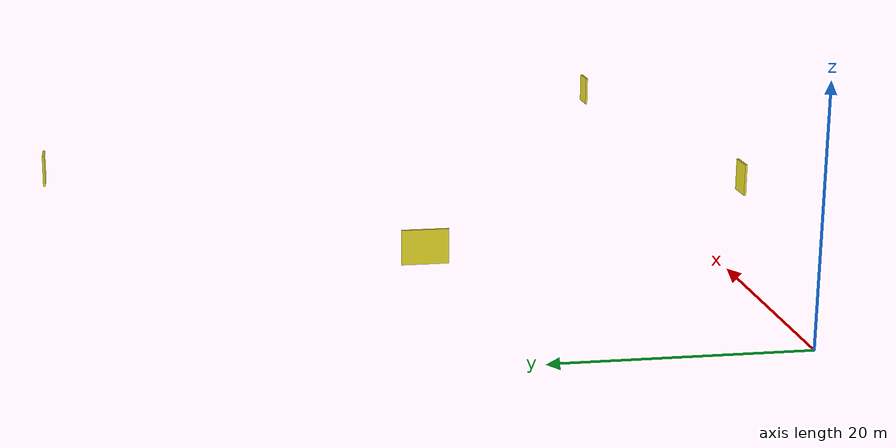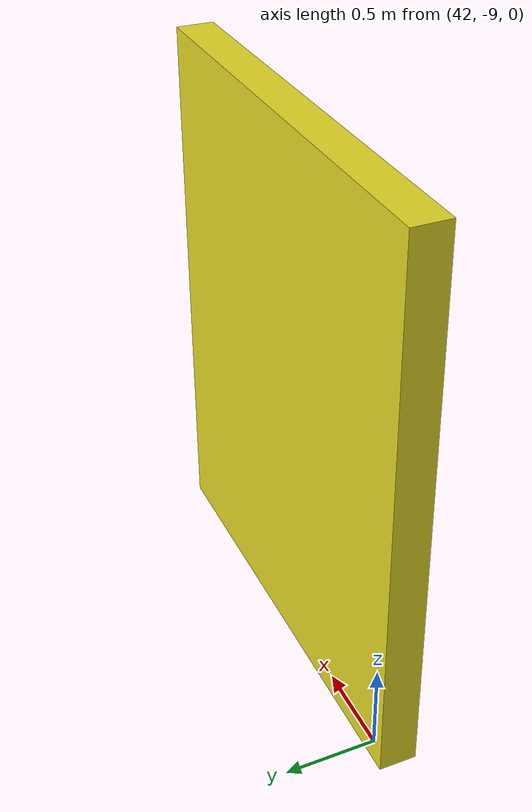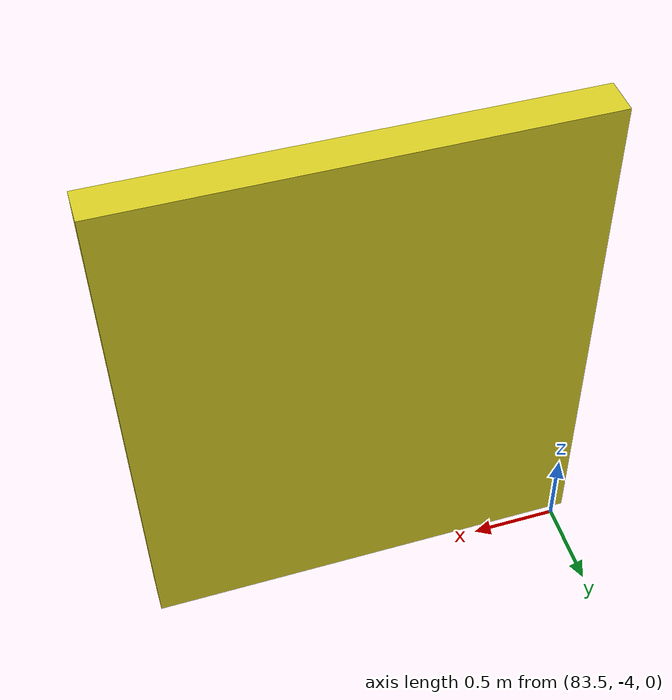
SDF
<sdf version="1.7">
 <world name="default">
  <include><uri>model://sun</uri></include>
  <plugin name="ros_interface_plugin" filename="librotors_gazebo_ros_interface_plugin.so"/>
  <spherical_coordinates>
   <surface_model>EARTH_WGS84</surface_model>
   <latitude_deg>47.3667</latitude_deg>
   <longitude_deg>8.55</longitude_deg>
   <elevation>500</elevation>
   <heading_deg>0</heading_deg>
  </spherical_coordinates>
  <physics type="ode">
   <ode>
    <solver>
     <type>quick</type>
     <iters>1000</iters>
     <sor>1.3</sor>
     <use_dynamic_moi_rescaling>0</use_dynamic_moi_rescaling>
    </solver>
    <constraints>
     <cfm>0</cfm>
     <erp>0.2</erp>
     <contact_max_correcting_vel>100</contact_max_correcting_vel>
     <contact_surface_layer>0.001</contact_surface_layer>
    </constraints>
   </ode>
   <max_step_size>0.001</max_step_size>
   <real_time_factor>1</real_time_factor>
   <real_time_update_rate>1000</real_time_update_rate>
   <gravity>0 0 -9.8</gravity>
  </physics>
  <model name="door1">
   <link name="link">
    <inertial>
     <mass>1</mass>
     <inertia>
      <ixx>0.166667</ixx>
      <ixy>0</ixy>
      <ixz>0</ixz>
      <iyy>0.166667</iyy>
      <iyz>0</iyz>
      <izz>0.166667</izz>
     </inertia>
    </inertial>
    <gravity>0</gravity>
    <visual name="visual">
     <geometry><box><size>2.5 0.2 3</size></box></geometry>
     <material>
      <script><name>Gazebo/Yellow</name><uri>file://media/materials/scripts/gazebo.material</uri></script>
     </material>
    </visual>
    <collision name="collision"><geometry><box><size>2.5 0.2 3</size></box></geometry></collision>
   </link>
   <static>0</static>
   <pose>43 -9 1.6 0 -0 0</pose>
  </model>
  <gravity>0 0 -9.8</gravity>
  <model name="door2">
   <link name="link">
    <inertial>
     <mass>1</mass>
     <inertia>
      <ixx>0.166667</ixx>
      <ixy>0</ixy>
      <ixz>0</ixz>
      <iyy>0.166667</iyy>
      <iyz>0</iyz>
      <izz>0.166667</izz>
     </inertia>
    </inertial>
    <gravity>0</gravity>
    <visual name="visual">
     <geometry><box><size>2.5 0.2 3</size></box></geometry>
     <material>
      <script><name>Gazebo/Yellow</name><uri>file://media/materials/scripts/gazebo.material</uri></script>
     </material>
    </visual>
    <collision name="collision"><geometry><box><size>2.5 0.2 3</size></box></geometry></collision>
   </link>
   <static>0</static>
   <pose>84.7002 -4.0782 1.6 0 -0 0</pose>
  </model>
  <model name="door3">
   <link name="link">
    <inertial>
     <mass>1</mass>
     <inertia>
      <ixx>0.166667</ixx>
      <ixy>0</ixy>
      <ixz>0</ixz>
      <iyy>0.166667</iyy>
      <iyz>0</iyz>
      <izz>0.166667</izz>
     </inertia>
    </inertial>
    <gravity>0</gravity>
    <visual name="visual">
     <geometry><box><size>4 0.2 3</size></box></geometry>
     <material>
      <script><name>Gazebo/Yellow</name><uri>file://media/materials/scripts/gazebo.material</uri></script>
     </material>
    </visual>
    <collision name="collision"><geometry><box><size>4 0.2 3</size></box></geometry></collision>
   </link>
   <static>0</static>
   <pose>24.6738 24.6352 1.6 0 0 -1.57</pose>
  </model>
  <model name="door4">
   <link name="link">
    <inertial>
     <mass>1</mass>
     <inertia>
      <ixx>0.166667</ixx>
      <ixy>0</ixy>
      <ixz>0</ixz>
      <iyy>0.166667</iyy>
      <iyz>0</iyz>
      <izz>0.166667</izz>
     </inertia>
    </inertial>
    <gravity>0</gravity>
    <visual name="visual">
     <geometry><box><size>2.5 0.2 3</size></box></geometry>
     <material>
      <script><name>Gazebo/Yellow</name><uri>file://media/materials/scripts/gazebo.material</uri></script>
     </material>
    </visual>
    <collision name="collision"><geometry><box><size>2.5 0.2 3</size></box></geometry></collision>
   </link>
   <static>0</static>
   <pose>56.0513 57.0117 1.57 0.0 -0.0 0.0</pose>
  </model>
 </world>
</sdf>
